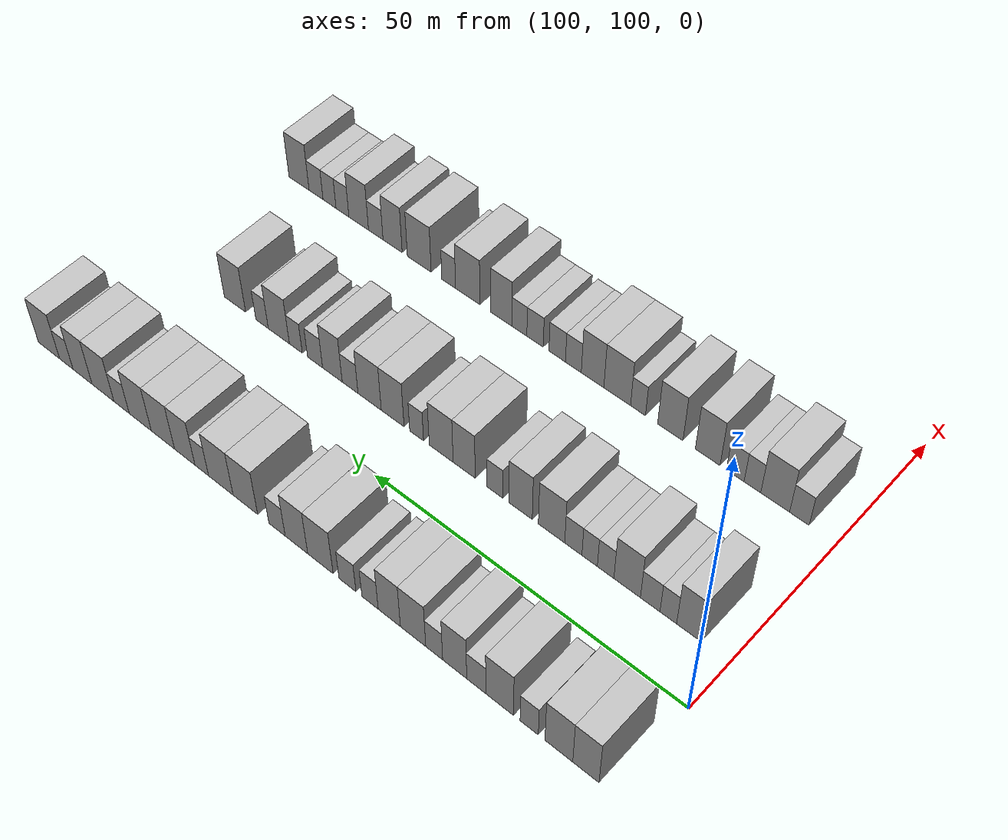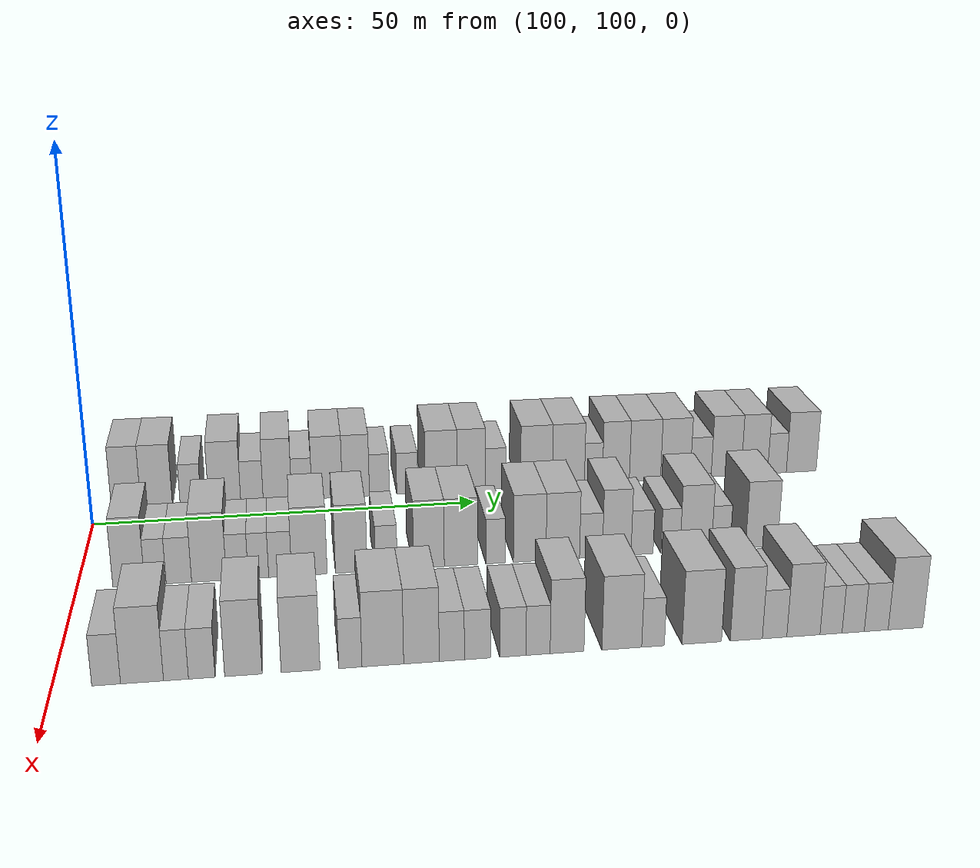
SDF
<sdf version="1.6">
 <world name="default">
  <model name="building_686">
   <static>1</static>
   <pose>91.0000 103.9070 0 0.000000 0.000000 0.000000</pose>
   <link name="link">
    <pose>0 0 4.50 0 0 0</pose>
    <collision name="collision"><geometry><box><size>10.0000 3.8394 9.0000</size></box></geometry></collision>
    <visual name="visual">
     <cast_shadows>0</cast_shadows>
     <geometry><box><size>10.0000 3.8394 9.0000</size></box></geometry>
     <material>
      <script>
       <uri>model://HANNAS_wall/materials/scripts</uri>
       <uri>model://HANNAS_wall/materials/textures</uri>
       <name>vrc/HANNAS_wall</name>
      </script>
     </material>
    </visual>
   </link>
  </model>
  <model name="building_687">
   <static>1</static>
   <pose>91.0000 107.8889 0 0.000000 0.000000 0.000000</pose>
   <link name="link">
    <pose>0 0 4.50 0 0 0</pose>
    <collision name="collision"><geometry><box><size>10.0000 4.1243 9.0000</size></box></geometry></collision>
    <visual name="visual">
     <cast_shadows>0</cast_shadows>
     <geometry><box><size>10.0000 4.1243 9.0000</size></box></geometry>
     <material>
      <script>
       <uri>model://HANNAS_wall/materials/scripts</uri>
       <uri>model://HANNAS_wall/materials/textures</uri>
       <name>vrc/HANNAS_wall</name>
      </script>
     </material>
    </visual>
   </link>
  </model>
  <model name="building_688">
   <static>1</static>
   <pose>91.0000 112.3276 0 0.000000 0.000000 0.000000</pose>
   <link name="link">
    <pose>0 0 3.00 0 0 0</pose>
    <collision name="collision"><geometry><box><size>10.0000 2.7530 6.0000</size></box></geometry></collision>
    <visual name="visual">
     <cast_shadows>0</cast_shadows>
     <geometry><box><size>10.0000 2.7530 6.0000</size></box></geometry>
     <material>
      <script>
       <uri>model://HANNAS_wall/materials/scripts</uri>
       <uri>model://HANNAS_wall/materials/textures</uri>
       <name>vrc/HANNAS_wall</name>
      </script>
     </material>
    </visual>
   </link>
  </model>
  <model name="building_689">
   <static>1</static>
   <pose>91.0000 116.8234 0 0.000000 0.000000 0.000000</pose>
   <link name="link">
    <pose>0 0 4.50 0 0 0</pose>
    <collision name="collision"><geometry><box><size>10.0000 4.2387 9.0000</size></box></geometry></collision>
    <visual name="visual">
     <cast_shadows>0</cast_shadows>
     <geometry><box><size>10.0000 4.2387 9.0000</size></box></geometry>
     <material>
      <script>
       <uri>model://HANNAS_wall/materials/scripts</uri>
       <uri>model://HANNAS_wall/materials/textures</uri>
       <name>vrc/HANNAS_wall</name>
      </script>
     </material>
    </visual>
   </link>
  </model>
  <model name="building_690">
   <static>1</static>
   <pose>91.0000 120.4344 0 0.000000 0.000000 0.000000</pose>
   <link name="link">
    <pose>0 0 3.00 0 0 0</pose>
    <collision name="collision"><geometry><box><size>10.0000 2.9833 6.0000</size></box></geometry></collision>
    <visual name="visual">
     <cast_shadows>0</cast_shadows>
     <geometry><box><size>10.0000 2.9833 6.0000</size></box></geometry>
     <material>
      <script>
       <uri>model://HANNAS_wall/materials/scripts</uri>
       <uri>model://HANNAS_wall/materials/textures</uri>
       <name>vrc/HANNAS_wall</name>
      </script>
     </material>
    </visual>
   </link>
  </model>
  <model name="building_691">
   <static>1</static>
   <pose>91.0000 123.8255 0 0.000000 0.000000 0.000000</pose>
   <link name="link">
    <pose>0 0 4.50 0 0 0</pose>
    <collision name="collision"><geometry><box><size>10.0000 3.7989 9.0000</size></box></geometry></collision>
    <visual name="visual">
     <cast_shadows>0</cast_shadows>
     <geometry><box><size>10.0000 3.7989 9.0000</size></box></geometry>
     <material>
      <script>
       <uri>model://HANNAS_wall/materials/scripts</uri>
       <uri>model://HANNAS_wall/materials/textures</uri>
       <name>vrc/HANNAS_wall</name>
      </script>
     </material>
    </visual>
   </link>
  </model>
  <model name="building_692">
   <static>1</static>
   <pose>91.0000 127.0788 0 0.000000 0.000000 0.000000</pose>
   <link name="link">
    <pose>0 0 3.00 0 0 0</pose>
    <collision name="collision"><geometry><box><size>10.0000 2.7078 6.0000</size></box></geometry></collision>
    <visual name="visual">
     <cast_shadows>0</cast_shadows>
     <geometry><box><size>10.0000 2.7078 6.0000</size></box></geometry>
     <material>
      <script>
       <uri>model://HANNAS_wall/materials/scripts</uri>
       <uri>model://HANNAS_wall/materials/textures</uri>
       <name>vrc/HANNAS_wall</name>
      </script>
     </material>
    </visual>
   </link>
  </model>
  <model name="building_693">
   <static>1</static>
   <pose>91.0000 130.4834 0 0.000000 0.000000 0.000000</pose>
   <link name="link">
    <pose>0 0 4.50 0 0 0</pose>
    <collision name="collision"><geometry><box><size>10.0000 4.1014 9.0000</size></box></geometry></collision>
    <visual name="visual">
     <cast_shadows>0</cast_shadows>
     <geometry><box><size>10.0000 4.1014 9.0000</size></box></geometry>
     <material>
      <script>
       <uri>model://HANNAS_wall/materials/scripts</uri>
       <uri>model://HANNAS_wall/materials/textures</uri>
       <name>vrc/HANNAS_wall</name>
      </script>
     </material>
    </visual>
   </link>
  </model>
  <model name="building_694">
   <static>1</static>
   <pose>91.0000 134.3597 0 0.000000 0.000000 0.000000</pose>
   <link name="link">
    <pose>0 0 4.50 0 0 0</pose>
    <collision name="collision"><geometry><box><size>10.0000 3.6512 9.0000</size></box></geometry></collision>
    <visual name="visual">
     <cast_shadows>0</cast_shadows>
     <geometry><box><size>10.0000 3.6512 9.0000</size></box></geometry>
     <material>
      <script>
       <uri>model://HANNAS_wall/materials/scripts</uri>
       <uri>model://HANNAS_wall/materials/textures</uri>
       <name>vrc/HANNAS_wall</name>
      </script>
     </material>
    </visual>
   </link>
  </model>
  <model name="building_695">
   <static>1</static>
   <pose>91.0000 137.5400 0 0.000000 0.000000 0.000000</pose>
   <link name="link">
    <pose>0 0 3.00 0 0 0</pose>
    <collision name="collision"><geometry><box><size>10.0000 2.7095 6.0000</size></box></geometry></collision>
    <visual name="visual">
     <cast_shadows>0</cast_shadows>
     <geometry><box><size>10.0000 2.7095 6.0000</size></box></geometry>
     <material>
      <script>
       <uri>model://HANNAS_wall/materials/scripts</uri>
       <uri>model://HANNAS_wall/materials/textures</uri>
       <name>vrc/HANNAS_wall</name>
      </script>
     </material>
    </visual>
   </link>
  </model>
  <model name="building_696">
   <static>1</static>
   <pose>91.0000 141.3247 0 0.000000 0.000000 0.000000</pose>
   <link name="link">
    <pose>0 0 3.00 0 0 0</pose>
    <collision name="collision"><geometry><box><size>10.0000 2.8599 6.0000</size></box></geometry></collision>
    <visual name="visual">
     <cast_shadows>0</cast_shadows>
     <geometry><box><size>10.0000 2.8599 6.0000</size></box></geometry>
     <material>
      <script>
       <uri>model://HANNAS_wall/materials/scripts</uri>
       <uri>model://HANNAS_wall/materials/textures</uri>
       <name>vrc/HANNAS_wall</name>
      </script>
     </material>
    </visual>
   </link>
  </model>
  <model name="building_697">
   <static>1</static>
   <pose>91.0000 145.9376 0 0.000000 0.000000 0.000000</pose>
   <link name="link">
    <pose>0 0 4.50 0 0 0</pose>
    <collision name="collision"><geometry><box><size>10.0000 4.3660 9.0000</size></box></geometry></collision>
    <visual name="visual">
     <cast_shadows>0</cast_shadows>
     <geometry><box><size>10.0000 4.3660 9.0000</size></box></geometry>
     <material>
      <script>
       <uri>model://HANNAS_wall/materials/scripts</uri>
       <uri>model://HANNAS_wall/materials/textures</uri>
       <name>vrc/HANNAS_wall</name>
      </script>
     </material>
    </visual>
   </link>
  </model>
  <model name="building_698">
   <static>1</static>
   <pose>91.0000 150.0839 0 0.000000 0.000000 0.000000</pose>
   <link name="link">
    <pose>0 0 4.50 0 0 0</pose>
    <collision name="collision"><geometry><box><size>10.0000 3.9265 9.0000</size></box></geometry></collision>
    <visual name="visual">
     <cast_shadows>0</cast_shadows>
     <geometry><box><size>10.0000 3.9265 9.0000</size></box></geometry>
     <material>
      <script>
       <uri>model://HANNAS_wall/materials/scripts</uri>
       <uri>model://HANNAS_wall/materials/textures</uri>
       <name>vrc/HANNAS_wall</name>
      </script>
     </material>
    </visual>
   </link>
  </model>
  <model name="building_699">
   <static>1</static>
   <pose>91.0000 153.4828 0 0.000000 0.000000 0.000000</pose>
   <link name="link">
    <pose>0 0 3.00 0 0 0</pose>
    <collision name="collision"><geometry><box><size>10.0000 2.8714 6.0000</size></box></geometry></collision>
    <visual name="visual">
     <cast_shadows>0</cast_shadows>
     <geometry><box><size>10.0000 2.8714 6.0000</size></box></geometry>
     <material>
      <script>
       <uri>model://HANNAS_wall/materials/scripts</uri>
       <uri>model://HANNAS_wall/materials/textures</uri>
       <name>vrc/HANNAS_wall</name>
      </script>
     </material>
    </visual>
   </link>
  </model>
  <model name="building_700">
   <static>1</static>
   <pose>91.0000 159.1316 0 0.000000 0.000000 0.000000</pose>
   <link name="link">
    <pose>0 0 4.50 0 0 0</pose>
    <collision name="collision"><geometry><box><size>10.0000 4.4261 9.0000</size></box></geometry></collision>
    <visual name="visual">
     <cast_shadows>0</cast_shadows>
     <geometry><box><size>10.0000 4.4261 9.0000</size></box></geometry>
     <material>
      <script>
       <uri>model://HANNAS_wall/materials/scripts</uri>
       <uri>model://HANNAS_wall/materials/textures</uri>
       <name>vrc/HANNAS_wall</name>
      </script>
     </material>
    </visual>
   </link>
  </model>
  <model name="building_701">
   <static>1</static>
   <pose>91.0000 163.5913 0 0.000000 0.000000 0.000000</pose>
   <link name="link">
    <pose>0 0 4.50 0 0 0</pose>
    <collision name="collision"><geometry><box><size>10.0000 4.4933 9.0000</size></box></geometry></collision>
    <visual name="visual">
     <cast_shadows>0</cast_shadows>
     <geometry><box><size>10.0000 4.4933 9.0000</size></box></geometry>
     <material>
      <script>
       <uri>model://HANNAS_wall/materials/scripts</uri>
       <uri>model://HANNAS_wall/materials/textures</uri>
       <name>vrc/HANNAS_wall</name>
      </script>
     </material>
    </visual>
   </link>
  </model>
  <model name="building_702">
   <static>1</static>
   <pose>91.0000 167.1012 0 0.000000 0.000000 0.000000</pose>
   <link name="link">
    <pose>0 0 3.00 0 0 0</pose>
    <collision name="collision"><geometry><box><size>10.0000 2.5266 6.0000</size></box></geometry></collision>
    <visual name="visual">
     <cast_shadows>0</cast_shadows>
     <geometry><box><size>10.0000 2.5266 6.0000</size></box></geometry>
     <material>
      <script>
       <uri>model://HANNAS_wall/materials/scripts</uri>
       <uri>model://HANNAS_wall/materials/textures</uri>
       <name>vrc/HANNAS_wall</name>
      </script>
     </material>
    </visual>
   </link>
  </model>
  <model name="building_703">
   <static>1</static>
   <pose>91.0000 170.2709 0 0.000000 0.000000 0.000000</pose>
   <link name="link">
    <pose>0 0 4.50 0 0 0</pose>
    <collision name="collision"><geometry><box><size>10.0000 3.8126 9.0000</size></box></geometry></collision>
    <visual name="visual">
     <cast_shadows>0</cast_shadows>
     <geometry><box><size>10.0000 3.8126 9.0000</size></box></geometry>
     <material>
      <script>
       <uri>model://HANNAS_wall/materials/scripts</uri>
       <uri>model://HANNAS_wall/materials/textures</uri>
       <name>vrc/HANNAS_wall</name>
      </script>
     </material>
    </visual>
   </link>
  </model>
  <model name="building_704">
   <static>1</static>
   <pose>91.0000 174.3943 0 0.000000 0.000000 0.000000</pose>
   <link name="link">
    <pose>0 0 4.50 0 0 0</pose>
    <collision name="collision"><geometry><box><size>10.0000 4.4342 9.0000</size></box></geometry></collision>
    <visual name="visual">
     <cast_shadows>0</cast_shadows>
     <geometry><box><size>10.0000 4.4342 9.0000</size></box></geometry>
     <material>
      <script>
       <uri>model://HANNAS_wall/materials/scripts</uri>
       <uri>model://HANNAS_wall/materials/textures</uri>
       <name>vrc/HANNAS_wall</name>
      </script>
     </material>
    </visual>
   </link>
  </model>
  <model name="building_705">
   <static>1</static>
   <pose>91.0000 178.7424 0 0.000000 0.000000 0.000000</pose>
   <link name="link">
    <pose>0 0 4.50 0 0 0</pose>
    <collision name="collision"><geometry><box><size>10.0000 4.2621 9.0000</size></box></geometry></collision>
    <visual name="visual">
     <cast_shadows>0</cast_shadows>
     <geometry><box><size>10.0000 4.2621 9.0000</size></box></geometry>
     <material>
      <script>
       <uri>model://HANNAS_wall/materials/scripts</uri>
       <uri>model://HANNAS_wall/materials/textures</uri>
       <name>vrc/HANNAS_wall</name>
      </script>
     </material>
    </visual>
   </link>
  </model>
  <model name="building_706">
   <static>1</static>
   <pose>91.0000 182.3689 0 0.000000 0.000000 0.000000</pose>
   <link name="link">
    <pose>0 0 3.00 0 0 0</pose>
    <collision name="collision"><geometry><box><size>10.0000 2.9910 6.0000</size></box></geometry></collision>
    <visual name="visual">
     <cast_shadows>0</cast_shadows>
     <geometry><box><size>10.0000 2.9910 6.0000</size></box></geometry>
     <material>
      <script>
       <uri>model://HANNAS_wall/materials/scripts</uri>
       <uri>model://HANNAS_wall/materials/textures</uri>
       <name>vrc/HANNAS_wall</name>
      </script>
     </material>
    </visual>
   </link>
  </model>
  <model name="building_707">
   <static>1</static>
   <pose>91.0000 186.0218 0 0.000000 0.000000 0.000000</pose>
   <link name="link">
    <pose>0 0 4.50 0 0 0</pose>
    <collision name="collision"><geometry><box><size>10.0000 4.3147 9.0000</size></box></geometry></collision>
    <visual name="visual">
     <cast_shadows>0</cast_shadows>
     <geometry><box><size>10.0000 4.3147 9.0000</size></box></geometry>
     <material>
      <script>
       <uri>model://HANNAS_wall/materials/scripts</uri>
       <uri>model://HANNAS_wall/materials/textures</uri>
       <name>vrc/HANNAS_wall</name>
      </script>
     </material>
    </visual>
   </link>
  </model>
  <model name="building_708">
   <static>1</static>
   <pose>91.0000 190.0942 0 0.000000 0.000000 0.000000</pose>
   <link name="link">
    <pose>0 0 4.50 0 0 0</pose>
    <collision name="collision"><geometry><box><size>10.0000 3.8302 9.0000</size></box></geometry></collision>
    <visual name="visual">
     <cast_shadows>0</cast_shadows>
     <geometry><box><size>10.0000 3.8302 9.0000</size></box></geometry>
     <material>
      <script>
       <uri>model://HANNAS_wall/materials/scripts</uri>
       <uri>model://HANNAS_wall/materials/textures</uri>
       <name>vrc/HANNAS_wall</name>
      </script>
     </material>
    </visual>
   </link>
  </model>
  <model name="building_709">
   <static>1</static>
   <pose>91.0000 193.3715 0 0.000000 0.000000 0.000000</pose>
   <link name="link">
    <pose>0 0 3.00 0 0 0</pose>
    <collision name="collision"><geometry><box><size>10.0000 2.7245 6.0000</size></box></geometry></collision>
    <visual name="visual">
     <cast_shadows>0</cast_shadows>
     <geometry><box><size>10.0000 2.7245 6.0000</size></box></geometry>
     <material>
      <script>
       <uri>model://HANNAS_wall/materials/scripts</uri>
       <uri>model://HANNAS_wall/materials/textures</uri>
       <name>vrc/HANNAS_wall</name>
      </script>
     </material>
    </visual>
   </link>
  </model>
  <model name="building_710">
   <static>1</static>
   <pose>91.0000 196.9123 0 0.000000 0.000000 0.000000</pose>
   <link name="link">
    <pose>0 0 4.50 0 0 0</pose>
    <collision name="collision"><geometry><box><size>10.0000 4.3570 9.0000</size></box></geometry></collision>
    <visual name="visual">
     <cast_shadows>0</cast_shadows>
     <geometry><box><size>10.0000 4.3570 9.0000</size></box></geometry>
     <material>
      <script>
       <uri>model://HANNAS_wall/materials/scripts</uri>
       <uri>model://HANNAS_wall/materials/textures</uri>
       <name>vrc/HANNAS_wall</name>
      </script>
     </material>
    </visual>
   </link>
  </model>
  <model name="building_876">
   <static>1</static>
   <pose>113.0000 106.1023 0 0.000000 0.000000 0.000000</pose>
   <link name="link">
    <pose>0 0 4.50 0 0 0</pose>
    <collision name="collision"><geometry><box><size>10.0000 3.7171 9.0000</size></box></geometry></collision>
    <visual name="visual">
     <cast_shadows>0</cast_shadows>
     <geometry><box><size>10.0000 3.7171 9.0000</size></box></geometry>
     <material>
      <script>
       <uri>model://HANNAS_wall/materials/scripts</uri>
       <uri>model://HANNAS_wall/materials/textures</uri>
       <name>vrc/HANNAS_wall</name>
      </script>
     </material>
    </visual>
   </link>
  </model>
  <model name="building_877">
   <static>1</static>
   <pose>113.0000 109.2178 0 0.000000 0.000000 0.000000</pose>
   <link name="link">
    <pose>0 0 3.00 0 0 0</pose>
    <collision name="collision"><geometry><box><size>10.0000 2.5138 6.0000</size></box></geometry></collision>
    <visual name="visual">
     <cast_shadows>0</cast_shadows>
     <geometry><box><size>10.0000 2.5138 6.0000</size></box></geometry>
     <material>
      <script>
       <uri>model://HANNAS_wall/materials/scripts</uri>
       <uri>model://HANNAS_wall/materials/textures</uri>
       <name>vrc/HANNAS_wall</name>
      </script>
     </material>
    </visual>
   </link>
  </model>
  <model name="building_878">
   <static>1</static>
   <pose>113.0000 111.9718 0 0.000000 0.000000 0.000000</pose>
   <link name="link">
    <pose>0 0 3.00 0 0 0</pose>
    <collision name="collision"><geometry><box><size>10.0000 2.9942 6.0000</size></box></geometry></collision>
    <visual name="visual">
     <cast_shadows>0</cast_shadows>
     <geometry><box><size>10.0000 2.9942 6.0000</size></box></geometry>
     <material>
      <script>
       <uri>model://HANNAS_wall/materials/scripts</uri>
       <uri>model://HANNAS_wall/materials/textures</uri>
       <name>vrc/HANNAS_wall</name>
      </script>
     </material>
    </visual>
   </link>
  </model>
  <model name="building_879">
   <static>1</static>
   <pose>113.0000 115.5263 0 0.000000 0.000000 0.000000</pose>
   <link name="link">
    <pose>0 0 4.50 0 0 0</pose>
    <collision name="collision"><geometry><box><size>10.0000 4.1148 9.0000</size></box></geometry></collision>
    <visual name="visual">
     <cast_shadows>0</cast_shadows>
     <geometry><box><size>10.0000 4.1148 9.0000</size></box></geometry>
     <material>
      <script>
       <uri>model://HANNAS_wall/materials/scripts</uri>
       <uri>model://HANNAS_wall/materials/textures</uri>
       <name>vrc/HANNAS_wall</name>
      </script>
     </material>
    </visual>
   </link>
  </model>
  <model name="building_880">
   <static>1</static>
   <pose>113.0000 118.8819 0 0.000000 0.000000 0.000000</pose>
   <link name="link">
    <pose>0 0 3.00 0 0 0</pose>
    <collision name="collision"><geometry><box><size>10.0000 2.5965 6.0000</size></box></geometry></collision>
    <visual name="visual">
     <cast_shadows>0</cast_shadows>
     <geometry><box><size>10.0000 2.5965 6.0000</size></box></geometry>
     <material>
      <script>
       <uri>model://HANNAS_wall/materials/scripts</uri>
       <uri>model://HANNAS_wall/materials/textures</uri>
       <name>vrc/HANNAS_wall</name>
      </script>
     </material>
    </visual>
   </link>
  </model>
  <model name="building_881">
   <static>1</static>
   <pose>113.0000 121.4009 0 0.000000 0.000000 0.000000</pose>
   <link name="link">
    <pose>0 0 3.00 0 0 0</pose>
    <collision name="collision"><geometry><box><size>10.0000 2.4413 6.0000</size></box></geometry></collision>
    <visual name="visual">
     <cast_shadows>0</cast_shadows>
     <geometry><box><size>10.0000 2.4413 6.0000</size></box></geometry>
     <material>
      <script>
       <uri>model://HANNAS_wall/materials/scripts</uri>
       <uri>model://HANNAS_wall/materials/textures</uri>
       <name>vrc/HANNAS_wall</name>
      </script>
     </material>
    </visual>
   </link>
  </model>
  <model name="building_882">
   <static>1</static>
   <pose>113.0000 123.9951 0 0.000000 0.000000 0.000000</pose>
   <link name="link">
    <pose>0 0 3.00 0 0 0</pose>
    <collision name="collision"><geometry><box><size>10.0000 2.7472 6.0000</size></box></geometry></collision>
    <visual name="visual">
     <cast_shadows>0</cast_shadows>
     <geometry><box><size>10.0000 2.7472 6.0000</size></box></geometry>
     <material>
      <script>
       <uri>model://HANNAS_wall/materials/scripts</uri>
       <uri>model://HANNAS_wall/materials/textures</uri>
       <name>vrc/HANNAS_wall</name>
      </script>
     </material>
    </visual>
   </link>
  </model>
  <model name="building_883">
   <static>1</static>
   <pose>113.0000 127.5046 0 0.000000 0.000000 0.000000</pose>
   <link name="link">
    <pose>0 0 4.50 0 0 0</pose>
    <collision name="collision"><geometry><box><size>10.0000 4.2718 9.0000</size></box></geometry></collision>
    <visual name="visual">
     <cast_shadows>0</cast_shadows>
     <geometry><box><size>10.0000 4.2718 9.0000</size></box></geometry>
     <material>
      <script>
       <uri>model://HANNAS_wall/materials/scripts</uri>
       <uri>model://HANNAS_wall/materials/textures</uri>
       <name>vrc/HANNAS_wall</name>
      </script>
     </material>
    </visual>
   </link>
  </model>
  <model name="building_884">
   <static>1</static>
   <pose>113.0000 132.5630 0 0.000000 0.000000 0.000000</pose>
   <link name="link">
    <pose>0 0 4.50 0 0 0</pose>
    <collision name="collision"><geometry><box><size>10.0000 3.8450 9.0000</size></box></geometry></collision>
    <visual name="visual">
     <cast_shadows>0</cast_shadows>
     <geometry><box><size>10.0000 3.8450 9.0000</size></box></geometry>
     <material>
      <script>
       <uri>model://HANNAS_wall/materials/scripts</uri>
       <uri>model://HANNAS_wall/materials/textures</uri>
       <name>vrc/HANNAS_wall</name>
      </script>
     </material>
    </visual>
   </link>
  </model>
  <model name="building_885">
   <static>1</static>
   <pose>113.0000 136.8108 0 0.000000 0.000000 0.000000</pose>
   <link name="link">
    <pose>0 0 3.00 0 0 0</pose>
    <collision name="collision"><geometry><box><size>10.0000 2.6505 6.0000</size></box></geometry></collision>
    <visual name="visual">
     <cast_shadows>0</cast_shadows>
     <geometry><box><size>10.0000 2.6505 6.0000</size></box></geometry>
     <material>
      <script>
       <uri>model://HANNAS_wall/materials/scripts</uri>
       <uri>model://HANNAS_wall/materials/textures</uri>
       <name>vrc/HANNAS_wall</name>
      </script>
     </material>
    </visual>
   </link>
  </model>
  <model name="building_886">
   <static>1</static>
   <pose>113.0000 142.0208 0 0.000000 0.000000 0.000000</pose>
   <link name="link">
    <pose>0 0 4.50 0 0 0</pose>
    <collision name="collision"><geometry><box><size>10.0000 3.7695 9.0000</size></box></geometry></collision>
    <visual name="visual">
     <cast_shadows>0</cast_shadows>
     <geometry><box><size>10.0000 3.7695 9.0000</size></box></geometry>
     <material>
      <script>
       <uri>model://HANNAS_wall/materials/scripts</uri>
       <uri>model://HANNAS_wall/materials/textures</uri>
       <name>vrc/HANNAS_wall</name>
      </script>
     </material>
    </visual>
   </link>
  </model>
  <model name="building_887">
   <static>1</static>
   <pose>113.0000 145.9710 0 0.000000 0.000000 0.000000</pose>
   <link name="link">
    <pose>0 0 4.50 0 0 0</pose>
    <collision name="collision"><geometry><box><size>10.0000 4.1309 9.0000</size></box></geometry></collision>
    <visual name="visual">
     <cast_shadows>0</cast_shadows>
     <geometry><box><size>10.0000 4.1309 9.0000</size></box></geometry>
     <material>
      <script>
       <uri>model://HANNAS_wall/materials/scripts</uri>
       <uri>model://HANNAS_wall/materials/textures</uri>
       <name>vrc/HANNAS_wall</name>
      </script>
     </material>
    </visual>
   </link>
  </model>
  <model name="building_888">
   <static>1</static>
   <pose>113.0000 150.2475 0 0.000000 0.000000 0.000000</pose>
   <link name="link">
    <pose>0 0 3.00 0 0 0</pose>
    <collision name="collision"><geometry><box><size>10.0000 2.4220 6.0000</size></box></geometry></collision>
    <visual name="visual">
     <cast_shadows>0</cast_shadows>
     <geometry><box><size>10.0000 2.4220 6.0000</size></box></geometry>
     <material>
      <script>
       <uri>model://HANNAS_wall/materials/scripts</uri>
       <uri>model://HANNAS_wall/materials/textures</uri>
       <name>vrc/HANNAS_wall</name>
      </script>
     </material>
    </visual>
   </link>
  </model>
  <model name="building_889">
   <static>1</static>
   <pose>113.0000 154.4890 0 0.000000 0.000000 0.000000</pose>
   <link name="link">
    <pose>0 0 4.50 0 0 0</pose>
    <collision name="collision"><geometry><box><size>10.0000 4.0610 9.0000</size></box></geometry></collision>
    <visual name="visual">
     <cast_shadows>0</cast_shadows>
     <geometry><box><size>10.0000 4.0610 9.0000</size></box></geometry>
     <material>
      <script>
       <uri>model://HANNAS_wall/materials/scripts</uri>
       <uri>model://HANNAS_wall/materials/textures</uri>
       <name>vrc/HANNAS_wall</name>
      </script>
     </material>
    </visual>
   </link>
  </model>
  <model name="building_890">
   <static>1</static>
   <pose>113.0000 158.6268 0 0.000000 0.000000 0.000000</pose>
   <link name="link">
    <pose>0 0 4.50 0 0 0</pose>
    <collision name="collision"><geometry><box><size>10.0000 4.2146 9.0000</size></box></geometry></collision>
    <visual name="visual">
     <cast_shadows>0</cast_shadows>
     <geometry><box><size>10.0000 4.2146 9.0000</size></box></geometry>
     <material>
      <script>
       <uri>model://HANNAS_wall/materials/scripts</uri>
       <uri>model://HANNAS_wall/materials/textures</uri>
       <name>vrc/HANNAS_wall</name>
      </script>
     </material>
    </visual>
   </link>
  </model>
  <model name="building_891">
   <static>1</static>
   <pose>113.0000 162.1754 0 0.000000 0.000000 0.000000</pose>
   <link name="link">
    <pose>0 0 3.00 0 0 0</pose>
    <collision name="collision"><geometry><box><size>10.0000 2.8827 6.0000</size></box></geometry></collision>
    <visual name="visual">
     <cast_shadows>0</cast_shadows>
     <geometry><box><size>10.0000 2.8827 6.0000</size></box></geometry>
     <material>
      <script>
       <uri>model://HANNAS_wall/materials/scripts</uri>
       <uri>model://HANNAS_wall/materials/textures</uri>
       <name>vrc/HANNAS_wall</name>
      </script>
     </material>
    </visual>
   </link>
  </model>
  <model name="building_892">
   <static>1</static>
   <pose>113.0000 165.4339 0 0.000000 0.000000 0.000000</pose>
   <link name="link">
    <pose>0 0 4.50 0 0 0</pose>
    <collision name="collision"><geometry><box><size>10.0000 3.6342 9.0000</size></box></geometry></collision>
    <visual name="visual">
     <cast_shadows>0</cast_shadows>
     <geometry><box><size>10.0000 3.6342 9.0000</size></box></geometry>
     <material>
      <script>
       <uri>model://HANNAS_wall/materials/scripts</uri>
       <uri>model://HANNAS_wall/materials/textures</uri>
       <name>vrc/HANNAS_wall</name>
      </script>
     </material>
    </visual>
   </link>
  </model>
  <model name="building_893">
   <static>1</static>
   <pose>113.0000 168.6555 0 0.000000 0.000000 0.000000</pose>
   <link name="link">
    <pose>0 0 3.00 0 0 0</pose>
    <collision name="collision"><geometry><box><size>10.0000 2.8090 6.0000</size></box></geometry></collision>
    <visual name="visual">
     <cast_shadows>0</cast_shadows>
     <geometry><box><size>10.0000 2.8090 6.0000</size></box></geometry>
     <material>
      <script>
       <uri>model://HANNAS_wall/materials/scripts</uri>
       <uri>model://HANNAS_wall/materials/textures</uri>
       <name>vrc/HANNAS_wall</name>
      </script>
     </material>
    </visual>
   </link>
  </model>
  <model name="building_894">
   <static>1</static>
   <pose>113.0000 172.2798 0 0.000000 0.000000 0.000000</pose>
   <link name="link">
    <pose>0 0 3.00 0 0 0</pose>
    <collision name="collision"><geometry><box><size>10.0000 2.4394 6.0000</size></box></geometry></collision>
    <visual name="visual">
     <cast_shadows>0</cast_shadows>
     <geometry><box><size>10.0000 2.4394 6.0000</size></box></geometry>
     <material>
      <script>
       <uri>model://HANNAS_wall/materials/scripts</uri>
       <uri>model://HANNAS_wall/materials/textures</uri>
       <name>vrc/HANNAS_wall</name>
      </script>
     </material>
    </visual>
   </link>
  </model>
  <model name="building_895">
   <static>1</static>
   <pose>113.0000 175.5252 0 0.000000 0.000000 0.000000</pose>
   <link name="link">
    <pose>0 0 4.50 0 0 0</pose>
    <collision name="collision"><geometry><box><size>10.0000 4.0516 9.0000</size></box></geometry></collision>
    <visual name="visual">
     <cast_shadows>0</cast_shadows>
     <geometry><box><size>10.0000 4.0516 9.0000</size></box></geometry>
     <material>
      <script>
       <uri>model://HANNAS_wall/materials/scripts</uri>
       <uri>model://HANNAS_wall/materials/textures</uri>
       <name>vrc/HANNAS_wall</name>
      </script>
     </material>
    </visual>
   </link>
  </model>
  <model name="building_896">
   <static>1</static>
   <pose>113.0000 178.7528 0 0.000000 0.000000 0.000000</pose>
   <link name="link">
    <pose>0 0 3.00 0 0 0</pose>
    <collision name="collision"><geometry><box><size>10.0000 2.4036 6.0000</size></box></geometry></collision>
    <visual name="visual">
     <cast_shadows>0</cast_shadows>
     <geometry><box><size>10.0000 2.4036 6.0000</size></box></geometry>
     <material>
      <script>
       <uri>model://HANNAS_wall/materials/scripts</uri>
       <uri>model://HANNAS_wall/materials/textures</uri>
       <name>vrc/HANNAS_wall</name>
      </script>
     </material>
    </visual>
   </link>
  </model>
  <model name="building_897">
   <static>1</static>
   <pose>113.0000 184.0365 0 0.000000 0.000000 0.000000</pose>
   <link name="link">
    <pose>0 0 4.50 0 0 0</pose>
    <collision name="collision"><geometry><box><size>10.0000 4.1636 9.0000</size></box></geometry></collision>
    <visual name="visual">
     <cast_shadows>0</cast_shadows>
     <geometry><box><size>10.0000 4.1636 9.0000</size></box></geometry>
     <material>
      <script>
       <uri>model://HANNAS_wall/materials/scripts</uri>
       <uri>model://HANNAS_wall/materials/textures</uri>
       <name>vrc/HANNAS_wall</name>
      </script>
     </material>
    </visual>
   </link>
  </model>
  <model name="building_1067">
   <static>1</static>
   <pose>135.0000 105.6368 0 0.000000 0.000000 0.000000</pose>
   <link name="link">
    <pose>0 0 3.00 0 0 0</pose>
    <collision name="collision"><geometry><box><size>10.0000 2.9695 6.0000</size></box></geometry></collision>
    <visual name="visual">
     <cast_shadows>0</cast_shadows>
     <geometry><box><size>10.0000 2.9695 6.0000</size></box></geometry>
     <material>
      <script>
       <uri>model://HANNAS_wall/materials/scripts</uri>
       <uri>model://HANNAS_wall/materials/textures</uri>
       <name>vrc/HANNAS_wall</name>
      </script>
     </material>
    </visual>
   </link>
  </model>
  <model name="building_1068">
   <static>1</static>
   <pose>135.0000 109.3434 0 0.000000 0.000000 0.000000</pose>
   <link name="link">
    <pose>0 0 4.50 0 0 0</pose>
    <collision name="collision"><geometry><box><size>10.0000 4.4438 9.0000</size></box></geometry></collision>
    <visual name="visual">
     <cast_shadows>0</cast_shadows>
     <geometry><box><size>10.0000 4.4438 9.0000</size></box></geometry>
     <material>
      <script>
       <uri>model://HANNAS_wall/materials/scripts</uri>
       <uri>model://HANNAS_wall/materials/textures</uri>
       <name>vrc/HANNAS_wall</name>
      </script>
     </material>
    </visual>
   </link>
  </model>
  <model name="building_1069">
   <static>1</static>
   <pose>135.0000 112.8635 0 0.000000 0.000000 0.000000</pose>
   <link name="link">
    <pose>0 0 3.00 0 0 0</pose>
    <collision name="collision"><geometry><box><size>10.0000 2.5963 6.0000</size></box></geometry></collision>
    <visual name="visual">
     <cast_shadows>0</cast_shadows>
     <geometry><box><size>10.0000 2.5963 6.0000</size></box></geometry>
     <material>
      <script>
       <uri>model://HANNAS_wall/materials/scripts</uri>
       <uri>model://HANNAS_wall/materials/textures</uri>
       <name>vrc/HANNAS_wall</name>
      </script>
     </material>
    </visual>
   </link>
  </model>
  <model name="building_1070">
   <static>1</static>
   <pose>135.0000 115.5547 0 0.000000 0.000000 0.000000</pose>
   <link name="link">
    <pose>0 0 3.00 0 0 0</pose>
    <collision name="collision"><geometry><box><size>10.0000 2.7861 6.0000</size></box></geometry></collision>
    <visual name="visual">
     <cast_shadows>0</cast_shadows>
     <geometry><box><size>10.0000 2.7861 6.0000</size></box></geometry>
     <material>
      <script>
       <uri>model://HANNAS_wall/materials/scripts</uri>
       <uri>model://HANNAS_wall/materials/textures</uri>
       <name>vrc/HANNAS_wall</name>
      </script>
     </material>
    </visual>
   </link>
  </model>
  <model name="building_1071">
   <static>1</static>
   <pose>135.0000 119.9242 0 0.000000 0.000000 0.000000</pose>
   <link name="link">
    <pose>0 0 4.50 0 0 0</pose>
    <collision name="collision"><geometry><box><size>10.0000 3.9529 9.0000</size></box></geometry></collision>
    <visual name="visual">
     <cast_shadows>0</cast_shadows>
     <geometry><box><size>10.0000 3.9529 9.0000</size></box></geometry>
     <material>
      <script>
       <uri>model://HANNAS_wall/materials/scripts</uri>
       <uri>model://HANNAS_wall/materials/textures</uri>
       <name>vrc/HANNAS_wall</name>
      </script>
     </material>
    </visual>
   </link>
  </model>
  <model name="building_1072">
   <static>1</static>
   <pose>135.0000 125.9690 0 0.000000 0.000000 0.000000</pose>
   <link name="link">
    <pose>0 0 4.50 0 0 0</pose>
    <collision name="collision"><geometry><box><size>10.0000 4.1367 9.0000</size></box></geometry></collision>
    <visual name="visual">
     <cast_shadows>0</cast_shadows>
     <geometry><box><size>10.0000 4.1367 9.0000</size></box></geometry>
     <material>
      <script>
       <uri>model://HANNAS_wall/materials/scripts</uri>
       <uri>model://HANNAS_wall/materials/textures</uri>
       <name>vrc/HANNAS_wall</name>
      </script>
     </material>
    </visual>
   </link>
  </model>
  <model name="building_1073">
   <static>1</static>
   <pose>135.0000 131.2801 0 0.000000 0.000000 0.000000</pose>
   <link name="link">
    <pose>0 0 3.00 0 0 0</pose>
    <collision name="collision"><geometry><box><size>10.0000 2.4855 6.0000</size></box></geometry></collision>
    <visual name="visual">
     <cast_shadows>0</cast_shadows>
     <geometry><box><size>10.0000 2.4855 6.0000</size></box></geometry>
     <material>
      <script>
       <uri>model://HANNAS_wall/materials/scripts</uri>
       <uri>model://HANNAS_wall/materials/textures</uri>
       <name>vrc/HANNAS_wall</name>
      </script>
     </material>
    </visual>
   </link>
  </model>
  <model name="building_1074">
   <static>1</static>
   <pose>135.0000 134.7693 0 0.000000 0.000000 0.000000</pose>
   <link name="link">
    <pose>0 0 4.50 0 0 0</pose>
    <collision name="collision"><geometry><box><size>10.0000 4.4929 9.0000</size></box></geometry></collision>
    <visual name="visual">
     <cast_shadows>0</cast_shadows>
     <geometry><box><size>10.0000 4.4929 9.0000</size></box></geometry>
     <material>
      <script>
       <uri>model://HANNAS_wall/materials/scripts</uri>
       <uri>model://HANNAS_wall/materials/textures</uri>
       <name>vrc/HANNAS_wall</name>
      </script>
     </material>
    </visual>
   </link>
  </model>
  <model name="building_1075">
   <static>1</static>
   <pose>135.0000 138.9422 0 0.000000 0.000000 0.000000</pose>
   <link name="link">
    <pose>0 0 4.50 0 0 0</pose>
    <collision name="collision"><geometry><box><size>10.0000 3.8528 9.0000</size></box></geometry></collision>
    <visual name="visual">
     <cast_shadows>0</cast_shadows>
     <geometry><box><size>10.0000 3.8528 9.0000</size></box></geometry>
     <material>
      <script>
       <uri>model://HANNAS_wall/materials/scripts</uri>
       <uri>model://HANNAS_wall/materials/textures</uri>
       <name>vrc/HANNAS_wall</name>
      </script>
     </material>
    </visual>
   </link>
  </model>
  <model name="building_1076">
   <static>1</static>
   <pose>135.0000 142.2389 0 0.000000 0.000000 0.000000</pose>
   <link name="link">
    <pose>0 0 3.00 0 0 0</pose>
    <collision name="collision"><geometry><box><size>10.0000 2.7406 6.0000</size></box></geometry></collision>
    <visual name="visual">
     <cast_shadows>0</cast_shadows>
     <geometry><box><size>10.0000 2.7406 6.0000</size></box></geometry>
     <material>
      <script>
       <uri>model://HANNAS_wall/materials/scripts</uri>
       <uri>model://HANNAS_wall/materials/textures</uri>
       <name>vrc/HANNAS_wall</name>
      </script>
     </material>
    </visual>
   </link>
  </model>
  <model name="building_1077">
   <static>1</static>
   <pose>135.0000 145.0443 0 0.000000 0.000000 0.000000</pose>
   <link name="link">
    <pose>0 0 3.00 0 0 0</pose>
    <collision name="collision"><geometry><box><size>10.0000 2.8701 6.0000</size></box></geometry></collision>
    <visual name="visual">
     <cast_shadows>0</cast_shadows>
     <geometry><box><size>10.0000 2.8701 6.0000</size></box></geometry>
     <material>
      <script>
       <uri>model://HANNAS_wall/materials/scripts</uri>
       <uri>model://HANNAS_wall/materials/textures</uri>
       <name>vrc/HANNAS_wall</name>
      </script>
     </material>
    </visual>
   </link>
  </model>
  <model name="building_1078">
   <static>1</static>
   <pose>135.0000 148.9268 0 0.000000 0.000000 0.000000</pose>
   <link name="link">
    <pose>0 0 3.00 0 0 0</pose>
    <collision name="collision"><geometry><box><size>10.0000 2.8950 6.0000</size></box></geometry></collision>
    <visual name="visual">
     <cast_shadows>0</cast_shadows>
     <geometry><box><size>10.0000 2.8950 6.0000</size></box></geometry>
     <material>
      <script>
       <uri>model://HANNAS_wall/materials/scripts</uri>
       <uri>model://HANNAS_wall/materials/textures</uri>
       <name>vrc/HANNAS_wall</name>
      </script>
     </material>
    </visual>
   </link>
  </model>
  <model name="building_1079">
   <static>1</static>
   <pose>135.0000 151.7101 0 0.000000 0.000000 0.000000</pose>
   <link name="link">
    <pose>0 0 3.00 0 0 0</pose>
    <collision name="collision"><geometry><box><size>10.0000 2.6717 6.0000</size></box></geometry></collision>
    <visual name="visual">
     <cast_shadows>0</cast_shadows>
     <geometry><box><size>10.0000 2.6717 6.0000</size></box></geometry>
     <material>
      <script>
       <uri>model://HANNAS_wall/materials/scripts</uri>
       <uri>model://HANNAS_wall/materials/textures</uri>
       <name>vrc/HANNAS_wall</name>
      </script>
     </material>
    </visual>
   </link>
  </model>
  <model name="building_1080">
   <static>1</static>
   <pose>135.0000 154.9315 0 0.000000 0.000000 0.000000</pose>
   <link name="link">
    <pose>0 0 4.50 0 0 0</pose>
    <collision name="collision"><geometry><box><size>10.0000 3.7712 9.0000</size></box></geometry></collision>
    <visual name="visual">
     <cast_shadows>0</cast_shadows>
     <geometry><box><size>10.0000 3.7712 9.0000</size></box></geometry>
     <material>
      <script>
       <uri>model://HANNAS_wall/materials/scripts</uri>
       <uri>model://HANNAS_wall/materials/textures</uri>
       <name>vrc/HANNAS_wall</name>
      </script>
     </material>
    </visual>
   </link>
  </model>
  <model name="building_1081">
   <static>1</static>
   <pose>135.0000 161.0526 0 0.000000 0.000000 0.000000</pose>
   <link name="link">
    <pose>0 0 4.50 0 0 0</pose>
    <collision name="collision"><geometry><box><size>10.0000 4.4710 9.0000</size></box></geometry></collision>
    <visual name="visual">
     <cast_shadows>0</cast_shadows>
     <geometry><box><size>10.0000 4.4710 9.0000</size></box></geometry>
     <material>
      <script>
       <uri>model://HANNAS_wall/materials/scripts</uri>
       <uri>model://HANNAS_wall/materials/textures</uri>
       <name>vrc/HANNAS_wall</name>
      </script>
     </material>
    </visual>
   </link>
  </model>
  <model name="building_1082">
   <static>1</static>
   <pose>135.0000 164.5680 0 0.000000 0.000000 0.000000</pose>
   <link name="link">
    <pose>0 0 3.00 0 0 0</pose>
    <collision name="collision"><geometry><box><size>10.0000 2.5598 6.0000</size></box></geometry></collision>
    <visual name="visual">
     <cast_shadows>0</cast_shadows>
     <geometry><box><size>10.0000 2.5598 6.0000</size></box></geometry>
     <material>
      <script>
       <uri>model://HANNAS_wall/materials/scripts</uri>
       <uri>model://HANNAS_wall/materials/textures</uri>
       <name>vrc/HANNAS_wall</name>
      </script>
     </material>
    </visual>
   </link>
  </model>
  <model name="building_1083">
   <static>1</static>
   <pose>135.0000 170.0962 0 0.000000 0.000000 0.000000</pose>
   <link name="link">
    <pose>0 0 4.50 0 0 0</pose>
    <collision name="collision"><geometry><box><size>10.0000 4.4965 9.0000</size></box></geometry></collision>
    <visual name="visual">
     <cast_shadows>0</cast_shadows>
     <geometry><box><size>10.0000 4.4965 9.0000</size></box></geometry>
     <material>
      <script>
       <uri>model://HANNAS_wall/materials/scripts</uri>
       <uri>model://HANNAS_wall/materials/textures</uri>
       <name>vrc/HANNAS_wall</name>
      </script>
     </material>
    </visual>
   </link>
  </model>
  <model name="building_1084">
   <static>1</static>
   <pose>135.0000 175.1849 0 0.000000 0.000000 0.000000</pose>
   <link name="link">
    <pose>0 0 4.50 0 0 0</pose>
    <collision name="collision"><geometry><box><size>10.0000 3.6809 9.0000</size></box></geometry></collision>
    <visual name="visual">
     <cast_shadows>0</cast_shadows>
     <geometry><box><size>10.0000 3.6809 9.0000</size></box></geometry>
     <material>
      <script>
       <uri>model://HANNAS_wall/materials/scripts</uri>
       <uri>model://HANNAS_wall/materials/textures</uri>
       <name>vrc/HANNAS_wall</name>
      </script>
     </material>
    </visual>
   </link>
  </model>
  <model name="building_1085">
   <static>1</static>
   <pose>135.0000 178.4364 0 0.000000 0.000000 0.000000</pose>
   <link name="link">
    <pose>0 0 3.00 0 0 0</pose>
    <collision name="collision"><geometry><box><size>10.0000 2.8222 6.0000</size></box></geometry></collision>
    <visual name="visual">
     <cast_shadows>0</cast_shadows>
     <geometry><box><size>10.0000 2.8222 6.0000</size></box></geometry>
     <material>
      <script>
       <uri>model://HANNAS_wall/materials/scripts</uri>
       <uri>model://HANNAS_wall/materials/textures</uri>
       <name>vrc/HANNAS_wall</name>
      </script>
     </material>
    </visual>
   </link>
  </model>
  <model name="building_1086">
   <static>1</static>
   <pose>135.0000 181.7713 0 0.000000 0.000000 0.000000</pose>
   <link name="link">
    <pose>0 0 4.50 0 0 0</pose>
    <collision name="collision"><geometry><box><size>10.0000 3.8475 9.0000</size></box></geometry></collision>
    <visual name="visual">
     <cast_shadows>0</cast_shadows>
     <geometry><box><size>10.0000 3.8475 9.0000</size></box></geometry>
     <material>
      <script>
       <uri>model://HANNAS_wall/materials/scripts</uri>
       <uri>model://HANNAS_wall/materials/textures</uri>
       <name>vrc/HANNAS_wall</name>
      </script>
     </material>
    </visual>
   </link>
  </model>
  <model name="building_1087">
   <static>1</static>
   <pose>135.0000 184.9781 0 0.000000 0.000000 0.000000</pose>
   <link name="link">
    <pose>0 0 3.00 0 0 0</pose>
    <collision name="collision"><geometry><box><size>10.0000 2.5661 6.0000</size></box></geometry></collision>
    <visual name="visual">
     <cast_shadows>0</cast_shadows>
     <geometry><box><size>10.0000 2.5661 6.0000</size></box></geometry>
     <material>
      <script>
       <uri>model://HANNAS_wall/materials/scripts</uri>
       <uri>model://HANNAS_wall/materials/textures</uri>
       <name>vrc/HANNAS_wall</name>
      </script>
     </material>
    </visual>
   </link>
  </model>
  <model name="building_1088">
   <static>1</static>
   <pose>135.0000 187.5615 0 0.000000 0.000000 0.000000</pose>
   <link name="link">
    <pose>0 0 3.00 0 0 0</pose>
    <collision name="collision"><geometry><box><size>10.0000 2.6007 6.0000</size></box></geometry></collision>
    <visual name="visual">
     <cast_shadows>0</cast_shadows>
     <geometry><box><size>10.0000 2.6007 6.0000</size></box></geometry>
     <material>
      <script>
       <uri>model://HANNAS_wall/materials/scripts</uri>
       <uri>model://HANNAS_wall/materials/textures</uri>
       <name>vrc/HANNAS_wall</name>
      </script>
     </material>
    </visual>
   </link>
  </model>
  <model name="building_1089">
   <static>1</static>
   <pose>135.0000 190.2676 0 0.000000 0.000000 0.000000</pose>
   <link name="link">
    <pose>0 0 3.00 0 0 0</pose>
    <collision name="collision"><geometry><box><size>10.0000 2.8116 6.0000</size></box></geometry></collision>
    <visual name="visual">
     <cast_shadows>0</cast_shadows>
     <geometry><box><size>10.0000 2.8116 6.0000</size></box></geometry>
     <material>
      <script>
       <uri>model://HANNAS_wall/materials/scripts</uri>
       <uri>model://HANNAS_wall/materials/textures</uri>
       <name>vrc/HANNAS_wall</name>
      </script>
     </material>
    </visual>
   </link>
  </model>
  <model name="building_1090">
   <static>1</static>
   <pose>135.0000 193.7173 0 0.000000 0.000000 0.000000</pose>
   <link name="link">
    <pose>0 0 4.50 0 0 0</pose>
    <collision name="collision"><geometry><box><size>10.0000 4.0878 9.0000</size></box></geometry></collision>
    <visual name="visual">
     <cast_shadows>0</cast_shadows>
     <geometry><box><size>10.0000 4.0878 9.0000</size></box></geometry>
     <material>
      <script>
       <uri>model://HANNAS_wall/materials/scripts</uri>
       <uri>model://HANNAS_wall/materials/textures</uri>
       <name>vrc/HANNAS_wall</name>
      </script>
     </material>
    </visual>
   </link>
  </model>
 </world>
</sdf>
